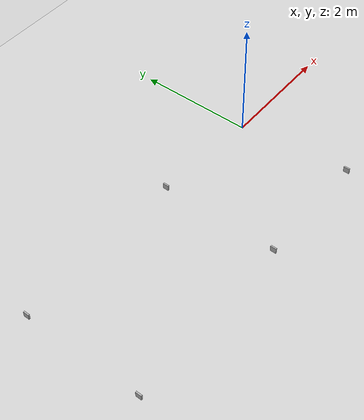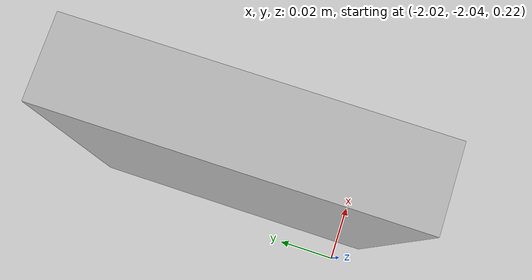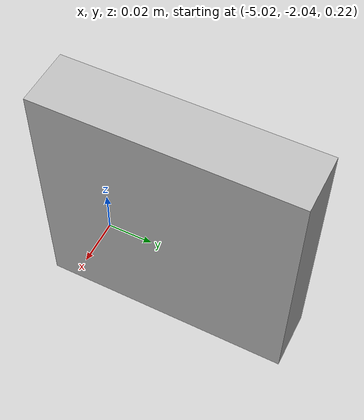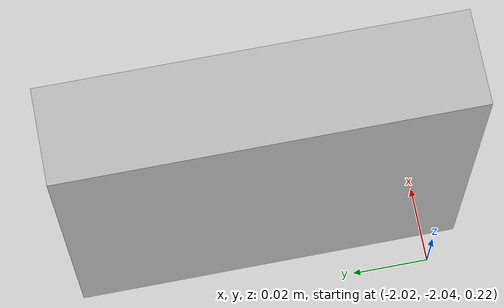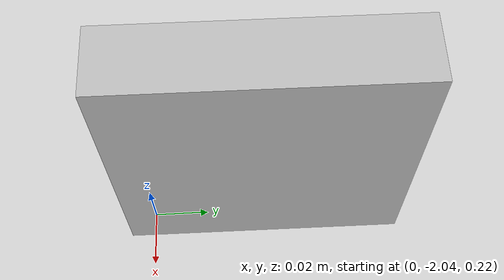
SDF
<sdf version="1.4">
 <world name="default">
  <light name="sun" type="directional">
   <pose>0 0 10 0 -0 0</pose>
   <diffuse>0.8 0.8 0.8 1</diffuse>
   <specular>0.2 0.2 0.2 1</specular>
   <attenuation>
    <range>1000</range>
    <constant>0.9</constant>
    <linear>0.01</linear>
    <quadratic>0.001</quadratic>
   </attenuation>
   <direction>-0.5 0.1 -0.9</direction>
  </light>
  <model name="ground_plane">
   <static>1</static>
   <link name="link">
    <collision name="collision">
     <geometry><plane><normal>0 0 1</normal><size>100 100</size></plane></geometry>
     <surface><friction><ode><mu>100</mu><mu2>50</mu2></ode></friction></surface>
    </collision>
    <visual name="visual">
     <cast_shadows>0</cast_shadows>
     <geometry><plane><normal>0 0 1</normal><size>100 100</size></plane></geometry>
     <material>
      <script><uri>file://media/materials/scripts/gazebo.material</uri><name>Gazebo/Grey</name></script>
     </material>
    </visual>
    <velocity_decay><linear>0</linear><angular>0</angular></velocity_decay>
   </link>
  </model>
  <physics type="ode">
   <max_step_size>0.001</max_step_size>
   <real_time_factor>1</real_time_factor>
   <real_time_update_rate>1000</real_time_update_rate>
   <gravity>0 0 -9.8</gravity>
  </physics>
  <scene><ambient>0.4 0.4 0.4 1</ambient><background>0.7 0.7 0.7 1</background><shadows>1</shadows></scene>
  <spherical_coordinates>
   <surface_model>EARTH_WGS84</surface_model>
   <latitude_deg>0</latitude_deg>
   <longitude_deg>0</longitude_deg>
   <elevation>0</elevation>
   <heading_deg>0</heading_deg>
  </spherical_coordinates>
  <model name="quadrotor_0">
   <link name="link">
    <pose>0 0 0.182466 0 -0 0</pose>
    <inertial>
     <mass>1.316</mass>
     <inertia><ixx>0.0128</ixx><ixy>0</ixy><ixz>0</ixz><iyy>0.0128</iyy><iyz>0</iyz><izz>0.0218</izz></inertia>
    </inertial>
    <collision name="collision">
     <geometry><mesh><uri>model://quadrotor/meshes/quadrotor_base.dae</uri></mesh></geometry>
    </collision>
    <visual name="visual">
     <geometry><mesh><uri>model://quadrotor/meshes/quadrotor_base.dae</uri></mesh></geometry>
    </visual>
    <velocity_decay><linear>0</linear><angular>0</angular></velocity_decay>
   </link>
   <pose>-2.5e-05 -2.00002 0 -2e-06 4e-06 -0.002087</pose>
   <static>0</static>
  </model>
  <model name="quadrotor_1">
   <link name="link">
    <pose>0 0 0.182466 0 -0 0</pose>
    <inertial>
     <mass>1.316</mass>
     <inertia><ixx>0.0128</ixx><ixy>0</ixy><ixz>0</ixz><iyy>0.0128</iyy><iyz>0</iyz><izz>0.0218</izz></inertia>
    </inertial>
    <collision name="collision">
     <geometry><mesh><uri>model://quadrotor/meshes/quadrotor_base.dae</uri></mesh></geometry>
    </collision>
    <visual name="visual">
     <geometry><mesh><uri>model://quadrotor/meshes/quadrotor_base.dae</uri></mesh></geometry>
    </visual>
    <velocity_decay><linear>0</linear><angular>0</angular></velocity_decay>
   </link>
   <pose>-2.00002 -2.00001 -3e-06 1.5e-05 1.1e-05 -0.00165</pose>
   <static>0</static>
  </model>
  <model name="quadrotor_2">
   <link name="link">
    <pose>0 0 0.182466 0 -0 0</pose>
    <inertial>
     <mass>1.316</mass>
     <inertia><ixx>0.0128</ixx><ixy>0</ixy><ixz>0</ixz><iyy>0.0128</iyy><iyz>0</iyz><izz>0.0218</izz></inertia>
    </inertial>
    <collision name="collision">
     <geometry><mesh><uri>model://quadrotor/meshes/quadrotor_base.dae</uri></mesh></geometry>
    </collision>
    <visual name="visual">
     <geometry><mesh><uri>model://quadrotor/meshes/quadrotor_base.dae</uri></mesh></geometry>
    </visual>
    <velocity_decay><linear>0</linear><angular>0</angular></velocity_decay>
   </link>
   <pose>-2.00001 -1e-05 0 3e-06 1e-06 -0.001213</pose>
   <static>0</static>
  </model>
  <model name="quadrotor_3">
   <link name="link">
    <pose>0 0 0.182466 0 -0 0</pose>
    <inertial>
     <mass>1.316</mass>
     <inertia><ixx>0.0128</ixx><ixy>0</ixy><ixz>0</ixz><iyy>0.0128</iyy><iyz>0</iyz><izz>0.0218</izz></inertia>
    </inertial>
    <collision name="collision">
     <geometry><mesh><uri>model://quadrotor/meshes/quadrotor_base.dae</uri></mesh></geometry>
    </collision>
    <visual name="visual">
     <geometry><mesh><uri>model://quadrotor/meshes/quadrotor_base.dae</uri></mesh></geometry>
    </visual>
    <velocity_decay><linear>0</linear><angular>0</angular></velocity_decay>
   </link>
   <pose>-5.00001 -2.00001 -4e-06 -1.3e-05 2.4e-05 -0.00078</pose>
   <static>0</static>
  </model>
  <model name="quadrotor_4">
   <link name="link">
    <pose>0 0 0.182466 0 -0 0</pose>
    <inertial>
     <mass>1.316</mass>
     <inertia><ixx>0.0128</ixx><ixy>0</ixy><ixz>0</ixz><iyy>0.0128</iyy><iyz>0</iyz><izz>0.0218</izz></inertia>
    </inertial>
    <collision name="collision">
     <geometry><mesh><uri>model://quadrotor/meshes/quadrotor_base.dae</uri></mesh></geometry>
    </collision>
    <visual name="visual">
     <geometry><mesh><uri>model://quadrotor/meshes/quadrotor_base.dae</uri></mesh></geometry>
    </visual>
    <velocity_decay><linear>0</linear><angular>0</angular></velocity_decay>
   </link>
   <pose>-5 -3e-06 1e-06 4.1359e-25 5e-06 -0.000376</pose>
   <static>0</static>
  </model>
 </world>
</sdf>
